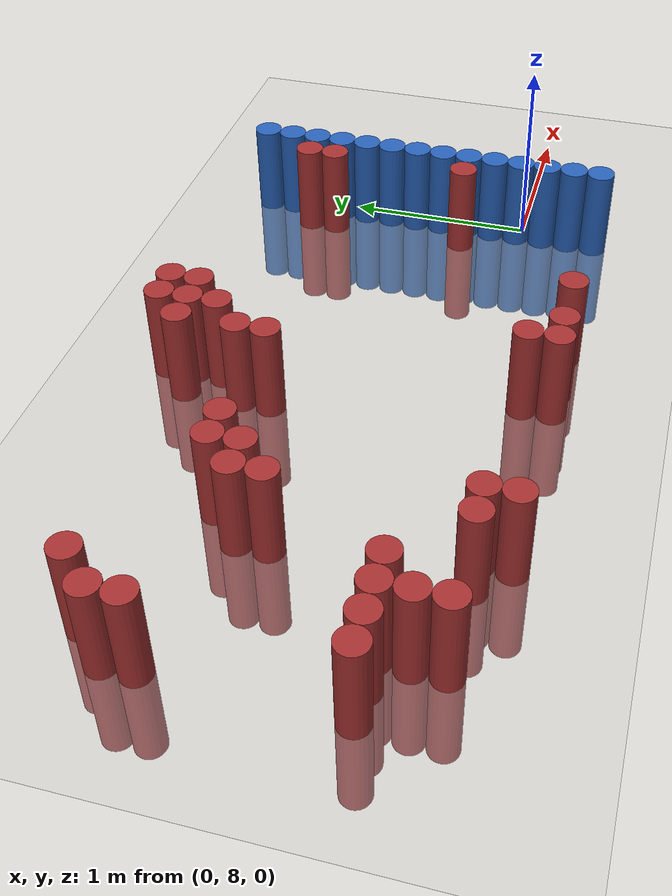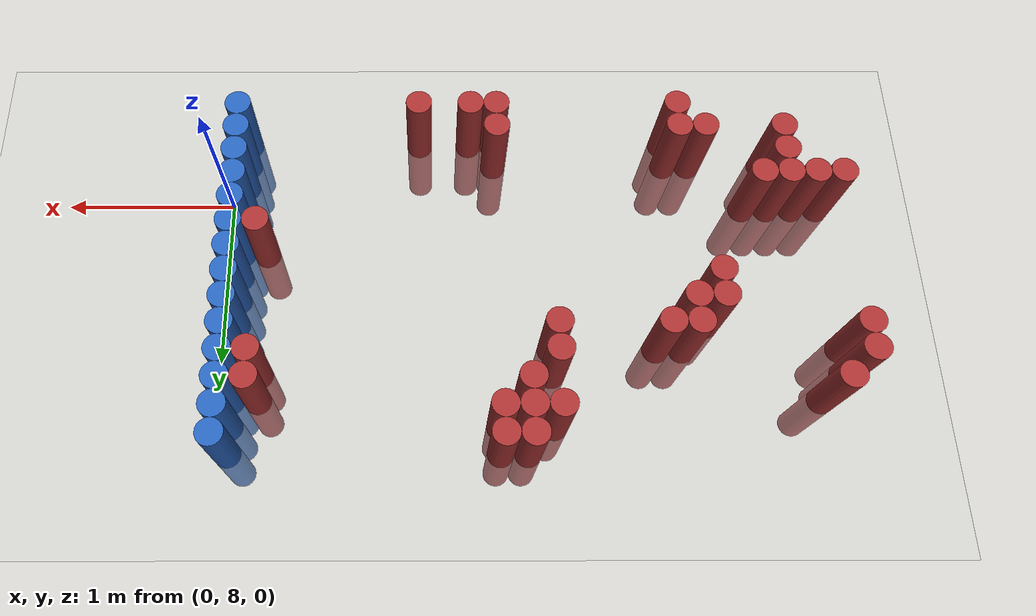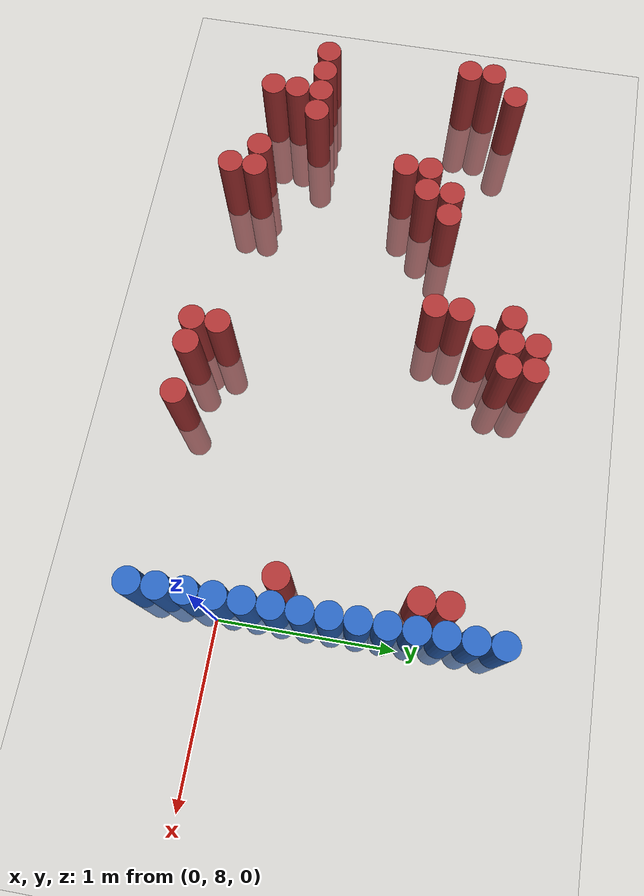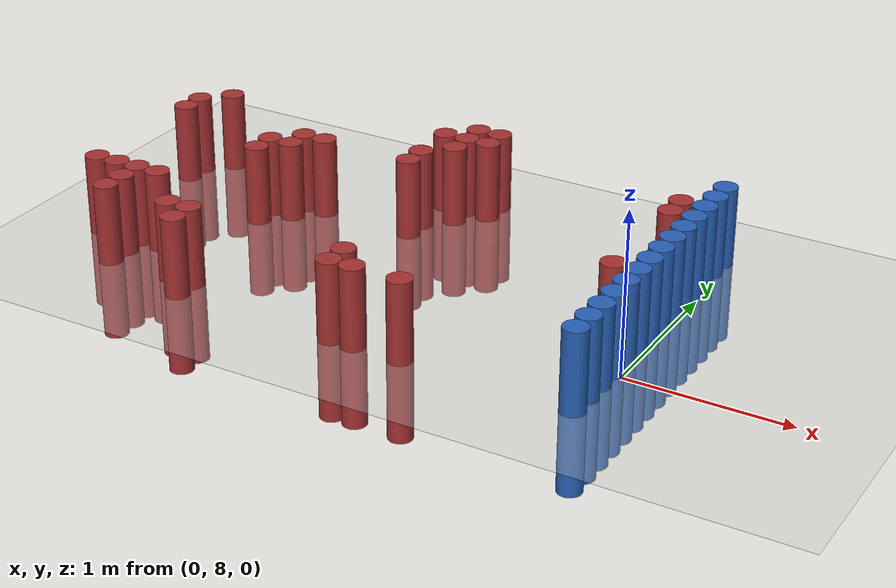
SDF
<sdf version="1.6">
 <world name="default">
  <model name="ground_plane">
   <static>1</static>
   <link name="link">
    <collision name="collision">
     <geometry><plane><normal>0 0 1</normal><size>100 100</size></plane></geometry>
     <surface><friction><ode><mu>100</mu><mu2>50</mu2></ode></friction></surface>
    </collision>
    <visual name="visual">
     <cast_shadows>0</cast_shadows>
     <geometry><plane><normal>0 0 1</normal><size>100 100</size></plane></geometry>
     <material>
      <script><uri>file://media/materials/scripts/gazebo.material</uri><name>Gazebo/Grey</name></script>
     </material>
    </visual>
   </link>
  </model>
  <model name="unit_cylinder_162">
   <static>1</static>
   <pose>-3.525000 8.025000 0.000000 0.000000 0.000000 0.000000</pose>
   <link name="link">
    <inertial>
     <mass>1</mass>
     <inertia><ixx>0.145833</ixx><ixy>0</ixy><ixz>0</ixz><iyy>0.145833</iyy><iyz>0</iyz><izz>0.125</izz></inertia>
    </inertial>
    <collision name="collision">
     <geometry><cylinder><radius>0.075000</radius><length>1</length></cylinder></geometry>
    </collision>
    <visual name="visual">
     <geometry><cylinder><radius>0.075000</radius><length>1</length></cylinder></geometry>
     <material>
      <ambient>0.648000 0.192000 0.192000 1</ambient>
      <diffuse>0.648000 0.192000 0.192000 1</diffuse>
     </material>
     <material>
      <script><name>Gazebo/Grey</name><uri>file://media/materials/scripts/gazebo.material</uri></script>
     </material>
    </visual>
   </link>
  </model>
  <model name="unit_cylinder_163">
   <static>1</static>
   <pose>-3.525000 8.925000 0.000000 0.000000 0.000000 0.000000</pose>
   <link name="link">
    <inertial>
     <mass>1</mass>
     <inertia><ixx>0.145833</ixx><ixy>0</ixy><ixz>0</ixz><iyy>0.145833</iyy><iyz>0</iyz><izz>0.125</izz></inertia>
    </inertial>
    <collision name="collision">
     <geometry><cylinder><radius>0.075000</radius><length>1</length></cylinder></geometry>
    </collision>
    <visual name="visual">
     <geometry><cylinder><radius>0.075000</radius><length>1</length></cylinder></geometry>
     <material>
      <ambient>0.648000 0.192000 0.192000 1</ambient>
      <diffuse>0.648000 0.192000 0.192000 1</diffuse>
     </material>
     <material>
      <script><name>Gazebo/Grey</name><uri>file://media/materials/scripts/gazebo.material</uri></script>
     </material>
    </visual>
   </link>
  </model>
  <model name="unit_cylinder_164">
   <static>1</static>
   <pose>-3.525000 9.075000 0.000000 0.000000 0.000000 0.000000</pose>
   <link name="link">
    <inertial>
     <mass>1</mass>
     <inertia><ixx>0.145833</ixx><ixy>0</ixy><ixz>0</ixz><iyy>0.145833</iyy><iyz>0</iyz><izz>0.125</izz></inertia>
    </inertial>
    <collision name="collision">
     <geometry><cylinder><radius>0.075000</radius><length>1</length></cylinder></geometry>
    </collision>
    <visual name="visual">
     <geometry><cylinder><radius>0.075000</radius><length>1</length></cylinder></geometry>
     <material>
      <ambient>0.648000 0.192000 0.192000 1</ambient>
      <diffuse>0.648000 0.192000 0.192000 1</diffuse>
     </material>
     <material>
      <script><name>Gazebo/Grey</name><uri>file://media/materials/scripts/gazebo.material</uri></script>
     </material>
    </visual>
   </link>
  </model>
  <model name="unit_cylinder_167">
   <static>1</static>
   <pose>-3.375000 8.025000 0.000000 0.000000 0.000000 0.000000</pose>
   <link name="link">
    <inertial>
     <mass>1</mass>
     <inertia><ixx>0.145833</ixx><ixy>0</ixy><ixz>0</ixz><iyy>0.145833</iyy><iyz>0</iyz><izz>0.125</izz></inertia>
    </inertial>
    <collision name="collision">
     <geometry><cylinder><radius>0.075000</radius><length>1</length></cylinder></geometry>
    </collision>
    <visual name="visual">
     <geometry><cylinder><radius>0.075000</radius><length>1</length></cylinder></geometry>
     <material>
      <ambient>0.648000 0.192000 0.192000 1</ambient>
      <diffuse>0.648000 0.192000 0.192000 1</diffuse>
     </material>
     <material>
      <script><name>Gazebo/Grey</name><uri>file://media/materials/scripts/gazebo.material</uri></script>
     </material>
    </visual>
   </link>
  </model>
  <model name="unit_cylinder_168">
   <static>1</static>
   <pose>-3.375000 9.225000 0.000000 0.000000 0.000000 0.000000</pose>
   <link name="link">
    <inertial>
     <mass>1</mass>
     <inertia><ixx>0.145833</ixx><ixy>0</ixy><ixz>0</ixz><iyy>0.145833</iyy><iyz>0</iyz><izz>0.125</izz></inertia>
    </inertial>
    <collision name="collision">
     <geometry><cylinder><radius>0.075000</radius><length>1</length></cylinder></geometry>
    </collision>
    <visual name="visual">
     <geometry><cylinder><radius>0.075000</radius><length>1</length></cylinder></geometry>
     <material>
      <ambient>0.648000 0.192000 0.192000 1</ambient>
      <diffuse>0.648000 0.192000 0.192000 1</diffuse>
     </material>
     <material>
      <script><name>Gazebo/Grey</name><uri>file://media/materials/scripts/gazebo.material</uri></script>
     </material>
    </visual>
   </link>
  </model>
  <model name="unit_cylinder_174">
   <static>1</static>
   <pose>-3.225000 7.725000 0.000000 0.000000 0.000000 0.000000</pose>
   <link name="link">
    <inertial>
     <mass>1</mass>
     <inertia><ixx>0.145833</ixx><ixy>0</ixy><ixz>0</ixz><iyy>0.145833</iyy><iyz>0</iyz><izz>0.125</izz></inertia>
    </inertial>
    <collision name="collision">
     <geometry><cylinder><radius>0.075000</radius><length>1</length></cylinder></geometry>
    </collision>
    <visual name="visual">
     <geometry><cylinder><radius>0.075000</radius><length>1</length></cylinder></geometry>
     <material>
      <ambient>0.648000 0.192000 0.192000 1</ambient>
      <diffuse>0.648000 0.192000 0.192000 1</diffuse>
     </material>
     <material>
      <script><name>Gazebo/Grey</name><uri>file://media/materials/scripts/gazebo.material</uri></script>
     </material>
    </visual>
   </link>
  </model>
  <model name="unit_cylinder_175">
   <static>1</static>
   <pose>-3.225000 7.875000 0.000000 0.000000 0.000000 0.000000</pose>
   <link name="link">
    <inertial>
     <mass>1</mass>
     <inertia><ixx>0.145833</ixx><ixy>0</ixy><ixz>0</ixz><iyy>0.145833</iyy><iyz>0</iyz><izz>0.125</izz></inertia>
    </inertial>
    <collision name="collision">
     <geometry><cylinder><radius>0.075000</radius><length>1</length></cylinder></geometry>
    </collision>
    <visual name="visual">
     <geometry><cylinder><radius>0.075000</radius><length>1</length></cylinder></geometry>
     <material>
      <ambient>0.648000 0.192000 0.192000 1</ambient>
      <diffuse>0.648000 0.192000 0.192000 1</diffuse>
     </material>
     <material>
      <script><name>Gazebo/Grey</name><uri>file://media/materials/scripts/gazebo.material</uri></script>
     </material>
    </visual>
   </link>
  </model>
  <model name="unit_cylinder_176">
   <static>1</static>
   <pose>-3.225000 8.025000 0.000000 0.000000 0.000000 0.000000</pose>
   <link name="link">
    <inertial>
     <mass>1</mass>
     <inertia><ixx>0.145833</ixx><ixy>0</ixy><ixz>0</ixz><iyy>0.145833</iyy><iyz>0</iyz><izz>0.125</izz></inertia>
    </inertial>
    <collision name="collision">
     <geometry><cylinder><radius>0.075000</radius><length>1</length></cylinder></geometry>
    </collision>
    <visual name="visual">
     <geometry><cylinder><radius>0.075000</radius><length>1</length></cylinder></geometry>
     <material>
      <ambient>0.648000 0.192000 0.192000 1</ambient>
      <diffuse>0.648000 0.192000 0.192000 1</diffuse>
     </material>
     <material>
      <script><name>Gazebo/Grey</name><uri>file://media/materials/scripts/gazebo.material</uri></script>
     </material>
    </visual>
   </link>
  </model>
  <model name="unit_cylinder_181">
   <static>1</static>
   <pose>-3.075000 8.025000 0.000000 0.000000 0.000000 0.000000</pose>
   <link name="link">
    <inertial>
     <mass>1</mass>
     <inertia><ixx>0.145833</ixx><ixy>0</ixy><ixz>0</ixz><iyy>0.145833</iyy><iyz>0</iyz><izz>0.125</izz></inertia>
    </inertial>
    <collision name="collision">
     <geometry><cylinder><radius>0.075000</radius><length>1</length></cylinder></geometry>
    </collision>
    <visual name="visual">
     <geometry><cylinder><radius>0.075000</radius><length>1</length></cylinder></geometry>
     <material>
      <ambient>0.648000 0.192000 0.192000 1</ambient>
      <diffuse>0.648000 0.192000 0.192000 1</diffuse>
     </material>
     <material>
      <script><name>Gazebo/Grey</name><uri>file://media/materials/scripts/gazebo.material</uri></script>
     </material>
    </visual>
   </link>
  </model>
  <model name="unit_cylinder_185">
   <static>1</static>
   <pose>-2.775000 7.725000 0.000000 0.000000 0.000000 0.000000</pose>
   <link name="link">
    <inertial>
     <mass>1</mass>
     <inertia><ixx>0.145833</ixx><ixy>0</ixy><ixz>0</ixz><iyy>0.145833</iyy><iyz>0</iyz><izz>0.125</izz></inertia>
    </inertial>
    <collision name="collision">
     <geometry><cylinder><radius>0.075000</radius><length>1</length></cylinder></geometry>
    </collision>
    <visual name="visual">
     <geometry><cylinder><radius>0.075000</radius><length>1</length></cylinder></geometry>
     <material>
      <ambient>0.648000 0.192000 0.192000 1</ambient>
      <diffuse>0.648000 0.192000 0.192000 1</diffuse>
     </material>
     <material>
      <script><name>Gazebo/Grey</name><uri>file://media/materials/scripts/gazebo.material</uri></script>
     </material>
    </visual>
   </link>
  </model>
  <model name="unit_cylinder_186">
   <static>1</static>
   <pose>-2.775000 8.625000 0.000000 0.000000 0.000000 0.000000</pose>
   <link name="link">
    <inertial>
     <mass>1</mass>
     <inertia><ixx>0.145833</ixx><ixy>0</ixy><ixz>0</ixz><iyy>0.145833</iyy><iyz>0</iyz><izz>0.125</izz></inertia>
    </inertial>
    <collision name="collision">
     <geometry><cylinder><radius>0.075000</radius><length>1</length></cylinder></geometry>
    </collision>
    <visual name="visual">
     <geometry><cylinder><radius>0.075000</radius><length>1</length></cylinder></geometry>
     <material>
      <ambient>0.648000 0.192000 0.192000 1</ambient>
      <diffuse>0.648000 0.192000 0.192000 1</diffuse>
     </material>
     <material>
      <script><name>Gazebo/Grey</name><uri>file://media/materials/scripts/gazebo.material</uri></script>
     </material>
    </visual>
   </link>
  </model>
  <model name="unit_cylinder_187">
   <static>1</static>
   <pose>-2.775000 8.775000 0.000000 0.000000 0.000000 0.000000</pose>
   <link name="link">
    <inertial>
     <mass>1</mass>
     <inertia><ixx>0.145833</ixx><ixy>0</ixy><ixz>0</ixz><iyy>0.145833</iyy><iyz>0</iyz><izz>0.125</izz></inertia>
    </inertial>
    <collision name="collision">
     <geometry><cylinder><radius>0.075000</radius><length>1</length></cylinder></geometry>
    </collision>
    <visual name="visual">
     <geometry><cylinder><radius>0.075000</radius><length>1</length></cylinder></geometry>
     <material>
      <ambient>0.648000 0.192000 0.192000 1</ambient>
      <diffuse>0.648000 0.192000 0.192000 1</diffuse>
     </material>
     <material>
      <script><name>Gazebo/Grey</name><uri>file://media/materials/scripts/gazebo.material</uri></script>
     </material>
    </visual>
   </link>
  </model>
  <model name="unit_cylinder_191">
   <static>1</static>
   <pose>-2.625000 7.575000 0.000000 0.000000 0.000000 0.000000</pose>
   <link name="link">
    <inertial>
     <mass>1</mass>
     <inertia><ixx>0.145833</ixx><ixy>0</ixy><ixz>0</ixz><iyy>0.145833</iyy><iyz>0</iyz><izz>0.125</izz></inertia>
    </inertial>
    <collision name="collision">
     <geometry><cylinder><radius>0.075000</radius><length>1</length></cylinder></geometry>
    </collision>
    <visual name="visual">
     <geometry><cylinder><radius>0.075000</radius><length>1</length></cylinder></geometry>
     <material>
      <ambient>0.648000 0.192000 0.192000 1</ambient>
      <diffuse>0.648000 0.192000 0.192000 1</diffuse>
     </material>
     <material>
      <script><name>Gazebo/Grey</name><uri>file://media/materials/scripts/gazebo.material</uri></script>
     </material>
    </visual>
   </link>
  </model>
  <model name="unit_cylinder_192">
   <static>1</static>
   <pose>-2.625000 7.725000 0.000000 0.000000 0.000000 0.000000</pose>
   <link name="link">
    <inertial>
     <mass>1</mass>
     <inertia><ixx>0.145833</ixx><ixy>0</ixy><ixz>0</ixz><iyy>0.145833</iyy><iyz>0</iyz><izz>0.125</izz></inertia>
    </inertial>
    <collision name="collision">
     <geometry><cylinder><radius>0.075000</radius><length>1</length></cylinder></geometry>
    </collision>
    <visual name="visual">
     <geometry><cylinder><radius>0.075000</radius><length>1</length></cylinder></geometry>
     <material>
      <ambient>0.648000 0.192000 0.192000 1</ambient>
      <diffuse>0.648000 0.192000 0.192000 1</diffuse>
     </material>
     <material>
      <script><name>Gazebo/Grey</name><uri>file://media/materials/scripts/gazebo.material</uri></script>
     </material>
    </visual>
   </link>
  </model>
  <model name="unit_cylinder_193">
   <static>1</static>
   <pose>-2.625000 8.775000 0.000000 0.000000 0.000000 0.000000</pose>
   <link name="link">
    <inertial>
     <mass>1</mass>
     <inertia><ixx>0.145833</ixx><ixy>0</ixy><ixz>0</ixz><iyy>0.145833</iyy><iyz>0</iyz><izz>0.125</izz></inertia>
    </inertial>
    <collision name="collision">
     <geometry><cylinder><radius>0.075000</radius><length>1</length></cylinder></geometry>
    </collision>
    <visual name="visual">
     <geometry><cylinder><radius>0.075000</radius><length>1</length></cylinder></geometry>
     <material>
      <ambient>0.648000 0.192000 0.192000 1</ambient>
      <diffuse>0.648000 0.192000 0.192000 1</diffuse>
     </material>
     <material>
      <script><name>Gazebo/Grey</name><uri>file://media/materials/scripts/gazebo.material</uri></script>
     </material>
    </visual>
   </link>
  </model>
  <model name="unit_cylinder_194">
   <static>1</static>
   <pose>-2.625000 8.925000 0.000000 0.000000 0.000000 0.000000</pose>
   <link name="link">
    <inertial>
     <mass>1</mass>
     <inertia><ixx>0.145833</ixx><ixy>0</ixy><ixz>0</ixz><iyy>0.145833</iyy><iyz>0</iyz><izz>0.125</izz></inertia>
    </inertial>
    <collision name="collision">
     <geometry><cylinder><radius>0.075000</radius><length>1</length></cylinder></geometry>
    </collision>
    <visual name="visual">
     <geometry><cylinder><radius>0.075000</radius><length>1</length></cylinder></geometry>
     <material>
      <ambient>0.648000 0.192000 0.192000 1</ambient>
      <diffuse>0.648000 0.192000 0.192000 1</diffuse>
     </material>
     <material>
      <script><name>Gazebo/Grey</name><uri>file://media/materials/scripts/gazebo.material</uri></script>
     </material>
    </visual>
   </link>
  </model>
  <model name="unit_cylinder_198">
   <static>1</static>
   <pose>-2.475000 8.925000 0.000000 0.000000 0.000000 0.000000</pose>
   <link name="link">
    <inertial>
     <mass>1</mass>
     <inertia><ixx>0.145833</ixx><ixy>0</ixy><ixz>0</ixz><iyy>0.145833</iyy><iyz>0</iyz><izz>0.125</izz></inertia>
    </inertial>
    <collision name="collision">
     <geometry><cylinder><radius>0.075000</radius><length>1</length></cylinder></geometry>
    </collision>
    <visual name="visual">
     <geometry><cylinder><radius>0.075000</radius><length>1</length></cylinder></geometry>
     <material>
      <ambient>0.648000 0.192000 0.192000 1</ambient>
      <diffuse>0.648000 0.192000 0.192000 1</diffuse>
     </material>
     <material>
      <script><name>Gazebo/Grey</name><uri>file://media/materials/scripts/gazebo.material</uri></script>
     </material>
    </visual>
   </link>
  </model>
  <model name="unit_cylinder_200">
   <static>1</static>
   <pose>-1.875000 8.925000 0.000000 0.000000 0.000000 0.000000</pose>
   <link name="link">
    <inertial>
     <mass>1</mass>
     <inertia><ixx>0.145833</ixx><ixy>0</ixy><ixz>0</ixz><iyy>0.145833</iyy><iyz>0</iyz><izz>0.125</izz></inertia>
    </inertial>
    <collision name="collision">
     <geometry><cylinder><radius>0.075000</radius><length>1</length></cylinder></geometry>
    </collision>
    <visual name="visual">
     <geometry><cylinder><radius>0.075000</radius><length>1</length></cylinder></geometry>
     <material>
      <ambient>0.648000 0.192000 0.192000 1</ambient>
      <diffuse>0.648000 0.192000 0.192000 1</diffuse>
     </material>
     <material>
      <script><name>Gazebo/Grey</name><uri>file://media/materials/scripts/gazebo.material</uri></script>
     </material>
    </visual>
   </link>
  </model>
  <model name="unit_cylinder_201">
   <static>1</static>
   <pose>-1.875000 9.075000 0.000000 0.000000 0.000000 0.000000</pose>
   <link name="link">
    <inertial>
     <mass>1</mass>
     <inertia><ixx>0.145833</ixx><ixy>0</ixy><ixz>0</ixz><iyy>0.145833</iyy><iyz>0</iyz><izz>0.125</izz></inertia>
    </inertial>
    <collision name="collision">
     <geometry><cylinder><radius>0.075000</radius><length>1</length></cylinder></geometry>
    </collision>
    <visual name="visual">
     <geometry><cylinder><radius>0.075000</radius><length>1</length></cylinder></geometry>
     <material>
      <ambient>0.648000 0.192000 0.192000 1</ambient>
      <diffuse>0.648000 0.192000 0.192000 1</diffuse>
     </material>
     <material>
      <script><name>Gazebo/Grey</name><uri>file://media/materials/scripts/gazebo.material</uri></script>
     </material>
    </visual>
   </link>
  </model>
  <model name="unit_cylinder_202">
   <static>1</static>
   <pose>-1.875000 9.375000 0.000000 0.000000 0.000000 0.000000</pose>
   <link name="link">
    <inertial>
     <mass>1</mass>
     <inertia><ixx>0.145833</ixx><ixy>0</ixy><ixz>0</ixz><iyy>0.145833</iyy><iyz>0</iyz><izz>0.125</izz></inertia>
    </inertial>
    <collision name="collision">
     <geometry><cylinder><radius>0.075000</radius><length>1</length></cylinder></geometry>
    </collision>
    <visual name="visual">
     <geometry><cylinder><radius>0.075000</radius><length>1</length></cylinder></geometry>
     <material>
      <ambient>0.648000 0.192000 0.192000 1</ambient>
      <diffuse>0.648000 0.192000 0.192000 1</diffuse>
     </material>
     <material>
      <script><name>Gazebo/Grey</name><uri>file://media/materials/scripts/gazebo.material</uri></script>
     </material>
    </visual>
   </link>
  </model>
  <model name="unit_cylinder_203">
   <static>1</static>
   <pose>-1.725000 9.225000 0.000000 0.000000 0.000000 0.000000</pose>
   <link name="link">
    <inertial>
     <mass>1</mass>
     <inertia><ixx>0.145833</ixx><ixy>0</ixy><ixz>0</ixz><iyy>0.145833</iyy><iyz>0</iyz><izz>0.125</izz></inertia>
    </inertial>
    <collision name="collision">
     <geometry><cylinder><radius>0.075000</radius><length>1</length></cylinder></geometry>
    </collision>
    <visual name="visual">
     <geometry><cylinder><radius>0.075000</radius><length>1</length></cylinder></geometry>
     <material>
      <ambient>0.648000 0.192000 0.192000 1</ambient>
      <diffuse>0.648000 0.192000 0.192000 1</diffuse>
     </material>
     <material>
      <script><name>Gazebo/Grey</name><uri>file://media/materials/scripts/gazebo.material</uri></script>
     </material>
    </visual>
   </link>
  </model>
  <model name="unit_cylinder_204">
   <static>1</static>
   <pose>-1.725000 9.375000 0.000000 0.000000 0.000000 0.000000</pose>
   <link name="link">
    <inertial>
     <mass>1</mass>
     <inertia><ixx>0.145833</ixx><ixy>0</ixy><ixz>0</ixz><iyy>0.145833</iyy><iyz>0</iyz><izz>0.125</izz></inertia>
    </inertial>
    <collision name="collision">
     <geometry><cylinder><radius>0.075000</radius><length>1</length></cylinder></geometry>
    </collision>
    <visual name="visual">
     <geometry><cylinder><radius>0.075000</radius><length>1</length></cylinder></geometry>
     <material>
      <ambient>0.648000 0.192000 0.192000 1</ambient>
      <diffuse>0.648000 0.192000 0.192000 1</diffuse>
     </material>
     <material>
      <script><name>Gazebo/Grey</name><uri>file://media/materials/scripts/gazebo.material</uri></script>
     </material>
    </visual>
   </link>
  </model>
  <model name="unit_cylinder_205">
   <static>1</static>
   <pose>-1.725000 9.525000 0.000000 0.000000 0.000000 0.000000</pose>
   <link name="link">
    <inertial>
     <mass>1</mass>
     <inertia><ixx>0.145833</ixx><ixy>0</ixy><ixz>0</ixz><iyy>0.145833</iyy><iyz>0</iyz><izz>0.125</izz></inertia>
    </inertial>
    <collision name="collision">
     <geometry><cylinder><radius>0.075000</radius><length>1</length></cylinder></geometry>
    </collision>
    <visual name="visual">
     <geometry><cylinder><radius>0.075000</radius><length>1</length></cylinder></geometry>
     <material>
      <ambient>0.648000 0.192000 0.192000 1</ambient>
      <diffuse>0.648000 0.192000 0.192000 1</diffuse>
     </material>
     <material>
      <script><name>Gazebo/Grey</name><uri>file://media/materials/scripts/gazebo.material</uri></script>
     </material>
    </visual>
   </link>
  </model>
  <model name="unit_cylinder_206">
   <static>1</static>
   <pose>-1.575000 7.575000 0.000000 0.000000 0.000000 0.000000</pose>
   <link name="link">
    <inertial>
     <mass>1</mass>
     <inertia><ixx>0.145833</ixx><ixy>0</ixy><ixz>0</ixz><iyy>0.145833</iyy><iyz>0</iyz><izz>0.125</izz></inertia>
    </inertial>
    <collision name="collision">
     <geometry><cylinder><radius>0.075000</radius><length>1</length></cylinder></geometry>
    </collision>
    <visual name="visual">
     <geometry><cylinder><radius>0.075000</radius><length>1</length></cylinder></geometry>
     <material>
      <ambient>0.648000 0.192000 0.192000 1</ambient>
      <diffuse>0.648000 0.192000 0.192000 1</diffuse>
     </material>
     <material>
      <script><name>Gazebo/Grey</name><uri>file://media/materials/scripts/gazebo.material</uri></script>
     </material>
    </visual>
   </link>
  </model>
  <model name="unit_cylinder_207">
   <static>1</static>
   <pose>-1.575000 7.725000 0.000000 0.000000 0.000000 0.000000</pose>
   <link name="link">
    <inertial>
     <mass>1</mass>
     <inertia><ixx>0.145833</ixx><ixy>0</ixy><ixz>0</ixz><iyy>0.145833</iyy><iyz>0</iyz><izz>0.125</izz></inertia>
    </inertial>
    <collision name="collision">
     <geometry><cylinder><radius>0.075000</radius><length>1</length></cylinder></geometry>
    </collision>
    <visual name="visual">
     <geometry><cylinder><radius>0.075000</radius><length>1</length></cylinder></geometry>
     <material>
      <ambient>0.648000 0.192000 0.192000 1</ambient>
      <diffuse>0.648000 0.192000 0.192000 1</diffuse>
     </material>
     <material>
      <script><name>Gazebo/Grey</name><uri>file://media/materials/scripts/gazebo.material</uri></script>
     </material>
    </visual>
   </link>
  </model>
  <model name="unit_cylinder_208">
   <static>1</static>
   <pose>-1.575000 9.375000 0.000000 0.000000 0.000000 0.000000</pose>
   <link name="link">
    <inertial>
     <mass>1</mass>
     <inertia><ixx>0.145833</ixx><ixy>0</ixy><ixz>0</ixz><iyy>0.145833</iyy><iyz>0</iyz><izz>0.125</izz></inertia>
    </inertial>
    <collision name="collision">
     <geometry><cylinder><radius>0.075000</radius><length>1</length></cylinder></geometry>
    </collision>
    <visual name="visual">
     <geometry><cylinder><radius>0.075000</radius><length>1</length></cylinder></geometry>
     <material>
      <ambient>0.648000 0.192000 0.192000 1</ambient>
      <diffuse>0.648000 0.192000 0.192000 1</diffuse>
     </material>
     <material>
      <script><name>Gazebo/Grey</name><uri>file://media/materials/scripts/gazebo.material</uri></script>
     </material>
    </visual>
   </link>
  </model>
  <model name="unit_cylinder_209">
   <static>1</static>
   <pose>-1.575000 9.525000 0.000000 0.000000 0.000000 0.000000</pose>
   <link name="link">
    <inertial>
     <mass>1</mass>
     <inertia><ixx>0.145833</ixx><ixy>0</ixy><ixz>0</ixz><iyy>0.145833</iyy><iyz>0</iyz><izz>0.125</izz></inertia>
    </inertial>
    <collision name="collision">
     <geometry><cylinder><radius>0.075000</radius><length>1</length></cylinder></geometry>
    </collision>
    <visual name="visual">
     <geometry><cylinder><radius>0.075000</radius><length>1</length></cylinder></geometry>
     <material>
      <ambient>0.648000 0.192000 0.192000 1</ambient>
      <diffuse>0.648000 0.192000 0.192000 1</diffuse>
     </material>
     <material>
      <script><name>Gazebo/Grey</name><uri>file://media/materials/scripts/gazebo.material</uri></script>
     </material>
    </visual>
   </link>
  </model>
  <model name="unit_cylinder_210">
   <static>1</static>
   <pose>-1.425000 7.575000 0.000000 0.000000 0.000000 0.000000</pose>
   <link name="link">
    <inertial>
     <mass>1</mass>
     <inertia><ixx>0.145833</ixx><ixy>0</ixy><ixz>0</ixz><iyy>0.145833</iyy><iyz>0</iyz><izz>0.125</izz></inertia>
    </inertial>
    <collision name="collision">
     <geometry><cylinder><radius>0.075000</radius><length>1</length></cylinder></geometry>
    </collision>
    <visual name="visual">
     <geometry><cylinder><radius>0.075000</radius><length>1</length></cylinder></geometry>
     <material>
      <ambient>0.648000 0.192000 0.192000 1</ambient>
      <diffuse>0.648000 0.192000 0.192000 1</diffuse>
     </material>
     <material>
      <script><name>Gazebo/Grey</name><uri>file://media/materials/scripts/gazebo.material</uri></script>
     </material>
    </visual>
   </link>
  </model>
  <model name="unit_cylinder_217">
   <static>1</static>
   <pose>-1.125000 7.575000 0.000000 0.000000 0.000000 0.000000</pose>
   <link name="link">
    <inertial>
     <mass>1</mass>
     <inertia><ixx>0.145833</ixx><ixy>0</ixy><ixz>0</ixz><iyy>0.145833</iyy><iyz>0</iyz><izz>0.125</izz></inertia>
    </inertial>
    <collision name="collision">
     <geometry><cylinder><radius>0.075000</radius><length>1</length></cylinder></geometry>
    </collision>
    <visual name="visual">
     <geometry><cylinder><radius>0.075000</radius><length>1</length></cylinder></geometry>
     <material>
      <ambient>0.648000 0.192000 0.192000 1</ambient>
      <diffuse>0.648000 0.192000 0.192000 1</diffuse>
     </material>
     <material>
      <script><name>Gazebo/Grey</name><uri>file://media/materials/scripts/gazebo.material</uri></script>
     </material>
    </visual>
   </link>
  </model>
  <model name="unit_cylinder_244">
   <static>1</static>
   <pose>-0.225000 8.325000 0.000000 0.000000 0.000000 0.000000</pose>
   <link name="link">
    <inertial>
     <mass>1</mass>
     <inertia><ixx>0.145833</ixx><ixy>0</ixy><ixz>0</ixz><iyy>0.145833</iyy><iyz>0</iyz><izz>0.125</izz></inertia>
    </inertial>
    <collision name="collision">
     <geometry><cylinder><radius>0.075000</radius><length>1</length></cylinder></geometry>
    </collision>
    <visual name="visual">
     <geometry><cylinder><radius>0.075000</radius><length>1</length></cylinder></geometry>
     <material>
      <ambient>0.648000 0.192000 0.192000 1</ambient>
      <diffuse>0.648000 0.192000 0.192000 1</diffuse>
     </material>
     <material>
      <script><name>Gazebo/Grey</name><uri>file://media/materials/scripts/gazebo.material</uri></script>
     </material>
    </visual>
   </link>
  </model>
  <model name="unit_cylinder_245">
   <static>1</static>
   <pose>-0.225000 9.075000 0.000000 0.000000 0.000000 0.000000</pose>
   <link name="link">
    <inertial>
     <mass>1</mass>
     <inertia><ixx>0.145833</ixx><ixy>0</ixy><ixz>0</ixz><iyy>0.145833</iyy><iyz>0</iyz><izz>0.125</izz></inertia>
    </inertial>
    <collision name="collision">
     <geometry><cylinder><radius>0.075000</radius><length>1</length></cylinder></geometry>
    </collision>
    <visual name="visual">
     <geometry><cylinder><radius>0.075000</radius><length>1</length></cylinder></geometry>
     <material>
      <ambient>0.648000 0.192000 0.192000 1</ambient>
      <diffuse>0.648000 0.192000 0.192000 1</diffuse>
     </material>
     <material>
      <script><name>Gazebo/Grey</name><uri>file://media/materials/scripts/gazebo.material</uri></script>
     </material>
    </visual>
   </link>
  </model>
  <model name="unit_cylinder_246">
   <static>1</static>
   <pose>-0.225000 9.225000 0.000000 0.000000 0.000000 0.000000</pose>
   <link name="link">
    <inertial>
     <mass>1</mass>
     <inertia><ixx>0.145833</ixx><ixy>0</ixy><ixz>0</ixz><iyy>0.145833</iyy><iyz>0</iyz><izz>0.125</izz></inertia>
    </inertial>
    <collision name="collision">
     <geometry><cylinder><radius>0.075000</radius><length>1</length></cylinder></geometry>
    </collision>
    <visual name="visual">
     <geometry><cylinder><radius>0.075000</radius><length>1</length></cylinder></geometry>
     <material>
      <ambient>0.648000 0.192000 0.192000 1</ambient>
      <diffuse>0.648000 0.192000 0.192000 1</diffuse>
     </material>
     <material>
      <script><name>Gazebo/Grey</name><uri>file://media/materials/scripts/gazebo.material</uri></script>
     </material>
    </visual>
   </link>
  </model>
  <model name="unit_cylinder_263">
   <static>1</static>
   <pose>-0.075000 7.575000 0.000000 0.000000 0.000000 0.000000</pose>
   <link name="link">
    <inertial>
     <mass>1</mass>
     <inertia><ixx>0.145833</ixx><ixy>0</ixy><ixz>0</ixz><iyy>0.145833</iyy><iyz>0</iyz><izz>0.125</izz></inertia>
    </inertial>
    <collision name="collision">
     <geometry><cylinder><radius>0.075000</radius><length>1</length></cylinder></geometry>
    </collision>
    <visual name="visual">
     <geometry><cylinder><radius>0.075000</radius><length>1</length></cylinder></geometry>
     <material>
      <ambient>0.152000 0.379000 0.720000 1</ambient>
      <diffuse>0.152000 0.379000 0.720000 1</diffuse>
     </material>
     <material>
      <script><name>Gazebo/Grey</name><uri>file://media/materials/scripts/gazebo.material</uri></script>
     </material>
    </visual>
   </link>
  </model>
  <model name="unit_cylinder_264">
   <static>1</static>
   <pose>-0.075000 7.725000 0.000000 0.000000 0.000000 0.000000</pose>
   <link name="link">
    <inertial>
     <mass>1</mass>
     <inertia><ixx>0.145833</ixx><ixy>0</ixy><ixz>0</ixz><iyy>0.145833</iyy><iyz>0</iyz><izz>0.125</izz></inertia>
    </inertial>
    <collision name="collision">
     <geometry><cylinder><radius>0.075000</radius><length>1</length></cylinder></geometry>
    </collision>
    <visual name="visual">
     <geometry><cylinder><radius>0.075000</radius><length>1</length></cylinder></geometry>
     <material>
      <ambient>0.152000 0.379000 0.720000 1</ambient>
      <diffuse>0.152000 0.379000 0.720000 1</diffuse>
     </material>
     <material>
      <script><name>Gazebo/Grey</name><uri>file://media/materials/scripts/gazebo.material</uri></script>
     </material>
    </visual>
   </link>
  </model>
  <model name="unit_cylinder_265">
   <static>1</static>
   <pose>-0.075000 7.875000 0.000000 0.000000 0.000000 0.000000</pose>
   <link name="link">
    <inertial>
     <mass>1</mass>
     <inertia><ixx>0.145833</ixx><ixy>0</ixy><ixz>0</ixz><iyy>0.145833</iyy><iyz>0</iyz><izz>0.125</izz></inertia>
    </inertial>
    <collision name="collision">
     <geometry><cylinder><radius>0.075000</radius><length>1</length></cylinder></geometry>
    </collision>
    <visual name="visual">
     <geometry><cylinder><radius>0.075000</radius><length>1</length></cylinder></geometry>
     <material>
      <ambient>0.152000 0.379000 0.720000 1</ambient>
      <diffuse>0.152000 0.379000 0.720000 1</diffuse>
     </material>
     <material>
      <script><name>Gazebo/Grey</name><uri>file://media/materials/scripts/gazebo.material</uri></script>
     </material>
    </visual>
   </link>
  </model>
  <model name="unit_cylinder_266">
   <static>1</static>
   <pose>-0.075000 8.025000 0.000000 0.000000 0.000000 0.000000</pose>
   <link name="link">
    <inertial>
     <mass>1</mass>
     <inertia><ixx>0.145833</ixx><ixy>0</ixy><ixz>0</ixz><iyy>0.145833</iyy><iyz>0</iyz><izz>0.125</izz></inertia>
    </inertial>
    <collision name="collision">
     <geometry><cylinder><radius>0.075000</radius><length>1</length></cylinder></geometry>
    </collision>
    <visual name="visual">
     <geometry><cylinder><radius>0.075000</radius><length>1</length></cylinder></geometry>
     <material>
      <ambient>0.152000 0.379000 0.720000 1</ambient>
      <diffuse>0.152000 0.379000 0.720000 1</diffuse>
     </material>
     <material>
      <script><name>Gazebo/Grey</name><uri>file://media/materials/scripts/gazebo.material</uri></script>
     </material>
    </visual>
   </link>
  </model>
  <model name="unit_cylinder_267">
   <static>1</static>
   <pose>-0.075000 8.175000 0.000000 0.000000 0.000000 0.000000</pose>
   <link name="link">
    <inertial>
     <mass>1</mass>
     <inertia><ixx>0.145833</ixx><ixy>0</ixy><ixz>0</ixz><iyy>0.145833</iyy><iyz>0</iyz><izz>0.125</izz></inertia>
    </inertial>
    <collision name="collision">
     <geometry><cylinder><radius>0.075000</radius><length>1</length></cylinder></geometry>
    </collision>
    <visual name="visual">
     <geometry><cylinder><radius>0.075000</radius><length>1</length></cylinder></geometry>
     <material>
      <ambient>0.152000 0.379000 0.720000 1</ambient>
      <diffuse>0.152000 0.379000 0.720000 1</diffuse>
     </material>
     <material>
      <script><name>Gazebo/Grey</name><uri>file://media/materials/scripts/gazebo.material</uri></script>
     </material>
    </visual>
   </link>
  </model>
  <model name="unit_cylinder_268">
   <static>1</static>
   <pose>-0.075000 8.325000 0.000000 0.000000 0.000000 0.000000</pose>
   <link name="link">
    <inertial>
     <mass>1</mass>
     <inertia><ixx>0.145833</ixx><ixy>0</ixy><ixz>0</ixz><iyy>0.145833</iyy><iyz>0</iyz><izz>0.125</izz></inertia>
    </inertial>
    <collision name="collision">
     <geometry><cylinder><radius>0.075000</radius><length>1</length></cylinder></geometry>
    </collision>
    <visual name="visual">
     <geometry><cylinder><radius>0.075000</radius><length>1</length></cylinder></geometry>
     <material>
      <ambient>0.152000 0.379000 0.720000 1</ambient>
      <diffuse>0.152000 0.379000 0.720000 1</diffuse>
     </material>
     <material>
      <script><name>Gazebo/Grey</name><uri>file://media/materials/scripts/gazebo.material</uri></script>
     </material>
    </visual>
   </link>
  </model>
  <model name="unit_cylinder_269">
   <static>1</static>
   <pose>-0.075000 8.475000 0.000000 0.000000 0.000000 0.000000</pose>
   <link name="link">
    <inertial>
     <mass>1</mass>
     <inertia><ixx>0.145833</ixx><ixy>0</ixy><ixz>0</ixz><iyy>0.145833</iyy><iyz>0</iyz><izz>0.125</izz></inertia>
    </inertial>
    <collision name="collision">
     <geometry><cylinder><radius>0.075000</radius><length>1</length></cylinder></geometry>
    </collision>
    <visual name="visual">
     <geometry><cylinder><radius>0.075000</radius><length>1</length></cylinder></geometry>
     <material>
      <ambient>0.152000 0.379000 0.720000 1</ambient>
      <diffuse>0.152000 0.379000 0.720000 1</diffuse>
     </material>
     <material>
      <script><name>Gazebo/Grey</name><uri>file://media/materials/scripts/gazebo.material</uri></script>
     </material>
    </visual>
   </link>
  </model>
  <model name="unit_cylinder_270">
   <static>1</static>
   <pose>-0.075000 8.625000 0.000000 0.000000 0.000000 0.000000</pose>
   <link name="link">
    <inertial>
     <mass>1</mass>
     <inertia><ixx>0.145833</ixx><ixy>0</ixy><ixz>0</ixz><iyy>0.145833</iyy><iyz>0</iyz><izz>0.125</izz></inertia>
    </inertial>
    <collision name="collision">
     <geometry><cylinder><radius>0.075000</radius><length>1</length></cylinder></geometry>
    </collision>
    <visual name="visual">
     <geometry><cylinder><radius>0.075000</radius><length>1</length></cylinder></geometry>
     <material>
      <ambient>0.152000 0.379000 0.720000 1</ambient>
      <diffuse>0.152000 0.379000 0.720000 1</diffuse>
     </material>
     <material>
      <script><name>Gazebo/Grey</name><uri>file://media/materials/scripts/gazebo.material</uri></script>
     </material>
    </visual>
   </link>
  </model>
  <model name="unit_cylinder_271">
   <static>1</static>
   <pose>-0.075000 8.775000 0.000000 0.000000 0.000000 0.000000</pose>
   <link name="link">
    <inertial>
     <mass>1</mass>
     <inertia><ixx>0.145833</ixx><ixy>0</ixy><ixz>0</ixz><iyy>0.145833</iyy><iyz>0</iyz><izz>0.125</izz></inertia>
    </inertial>
    <collision name="collision">
     <geometry><cylinder><radius>0.075000</radius><length>1</length></cylinder></geometry>
    </collision>
    <visual name="visual">
     <geometry><cylinder><radius>0.075000</radius><length>1</length></cylinder></geometry>
     <material>
      <ambient>0.152000 0.379000 0.720000 1</ambient>
      <diffuse>0.152000 0.379000 0.720000 1</diffuse>
     </material>
     <material>
      <script><name>Gazebo/Grey</name><uri>file://media/materials/scripts/gazebo.material</uri></script>
     </material>
    </visual>
   </link>
  </model>
  <model name="unit_cylinder_272">
   <static>1</static>
   <pose>-0.075000 8.925000 0.000000 0.000000 0.000000 0.000000</pose>
   <link name="link">
    <inertial>
     <mass>1</mass>
     <inertia><ixx>0.145833</ixx><ixy>0</ixy><ixz>0</ixz><iyy>0.145833</iyy><iyz>0</iyz><izz>0.125</izz></inertia>
    </inertial>
    <collision name="collision">
     <geometry><cylinder><radius>0.075000</radius><length>1</length></cylinder></geometry>
    </collision>
    <visual name="visual">
     <geometry><cylinder><radius>0.075000</radius><length>1</length></cylinder></geometry>
     <material>
      <ambient>0.152000 0.379000 0.720000 1</ambient>
      <diffuse>0.152000 0.379000 0.720000 1</diffuse>
     </material>
     <material>
      <script><name>Gazebo/Grey</name><uri>file://media/materials/scripts/gazebo.material</uri></script>
     </material>
    </visual>
   </link>
  </model>
  <model name="unit_cylinder_273">
   <static>1</static>
   <pose>-0.075000 9.075000 0.000000 0.000000 0.000000 0.000000</pose>
   <link name="link">
    <inertial>
     <mass>1</mass>
     <inertia><ixx>0.145833</ixx><ixy>0</ixy><ixz>0</ixz><iyy>0.145833</iyy><iyz>0</iyz><izz>0.125</izz></inertia>
    </inertial>
    <collision name="collision">
     <geometry><cylinder><radius>0.075000</radius><length>1</length></cylinder></geometry>
    </collision>
    <visual name="visual">
     <geometry><cylinder><radius>0.075000</radius><length>1</length></cylinder></geometry>
     <material>
      <ambient>0.152000 0.379000 0.720000 1</ambient>
      <diffuse>0.152000 0.379000 0.720000 1</diffuse>
     </material>
     <material>
      <script><name>Gazebo/Grey</name><uri>file://media/materials/scripts/gazebo.material</uri></script>
     </material>
    </visual>
   </link>
  </model>
  <model name="unit_cylinder_274">
   <static>1</static>
   <pose>-0.075000 9.225000 0.000000 0.000000 0.000000 0.000000</pose>
   <link name="link">
    <inertial>
     <mass>1</mass>
     <inertia><ixx>0.145833</ixx><ixy>0</ixy><ixz>0</ixz><iyy>0.145833</iyy><iyz>0</iyz><izz>0.125</izz></inertia>
    </inertial>
    <collision name="collision">
     <geometry><cylinder><radius>0.075000</radius><length>1</length></cylinder></geometry>
    </collision>
    <visual name="visual">
     <geometry><cylinder><radius>0.075000</radius><length>1</length></cylinder></geometry>
     <material>
      <ambient>0.152000 0.379000 0.720000 1</ambient>
      <diffuse>0.152000 0.379000 0.720000 1</diffuse>
     </material>
     <material>
      <script><name>Gazebo/Grey</name><uri>file://media/materials/scripts/gazebo.material</uri></script>
     </material>
    </visual>
   </link>
  </model>
  <model name="unit_cylinder_275">
   <static>1</static>
   <pose>-0.075000 9.375000 0.000000 0.000000 0.000000 0.000000</pose>
   <link name="link">
    <inertial>
     <mass>1</mass>
     <inertia><ixx>0.145833</ixx><ixy>0</ixy><ixz>0</ixz><iyy>0.145833</iyy><iyz>0</iyz><izz>0.125</izz></inertia>
    </inertial>
    <collision name="collision">
     <geometry><cylinder><radius>0.075000</radius><length>1</length></cylinder></geometry>
    </collision>
    <visual name="visual">
     <geometry><cylinder><radius>0.075000</radius><length>1</length></cylinder></geometry>
     <material>
      <ambient>0.152000 0.379000 0.720000 1</ambient>
      <diffuse>0.152000 0.379000 0.720000 1</diffuse>
     </material>
     <material>
      <script><name>Gazebo/Grey</name><uri>file://media/materials/scripts/gazebo.material</uri></script>
     </material>
    </visual>
   </link>
  </model>
  <model name="unit_cylinder_276">
   <static>1</static>
   <pose>-0.075000 9.525000 0.000000 0.000000 0.000000 0.000000</pose>
   <link name="link">
    <inertial>
     <mass>1</mass>
     <inertia><ixx>0.145833</ixx><ixy>0</ixy><ixz>0</ixz><iyy>0.145833</iyy><iyz>0</iyz><izz>0.125</izz></inertia>
    </inertial>
    <collision name="collision">
     <geometry><cylinder><radius>0.075000</radius><length>1</length></cylinder></geometry>
    </collision>
    <visual name="visual">
     <geometry><cylinder><radius>0.075000</radius><length>1</length></cylinder></geometry>
     <material>
      <ambient>0.152000 0.379000 0.720000 1</ambient>
      <diffuse>0.152000 0.379000 0.720000 1</diffuse>
     </material>
     <material>
      <script><name>Gazebo/Grey</name><uri>file://media/materials/scripts/gazebo.material</uri></script>
     </material>
    </visual>
   </link>
  </model>
 </world>
</sdf>
